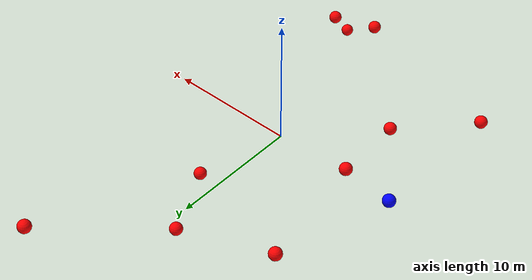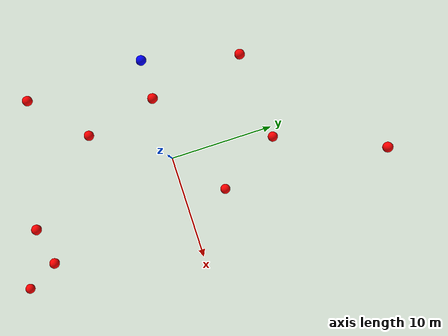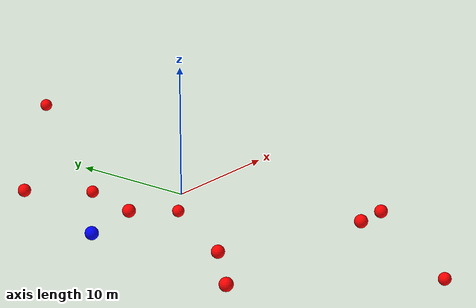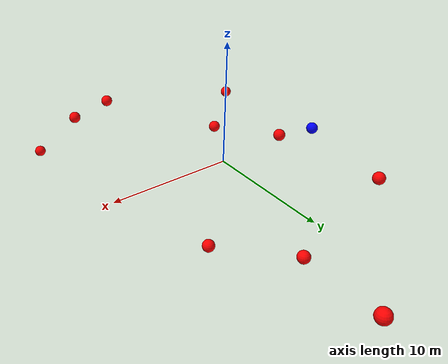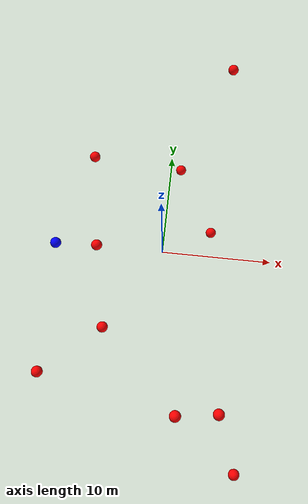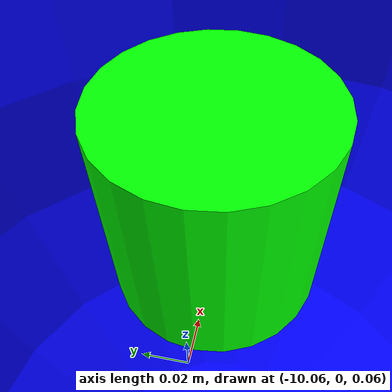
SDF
<?xml version="1.0" ?>
<sdf version="1.8">
    <world name="3d_world">
        <physics name="1ms" type="ode">
            <max_step_size>0.001</max_step_size>
            <real_time_factor>1.0</real_time_factor>
            <real_time_update_rate>1000.0</real_time_update_rate>
        </physics>
        <gravity>0 0 0</gravity>

        <plugin
            filename="gz-sim-physics-system"
            name="gz::sim::v8::systems::Physics">
        </plugin>
        <plugin
            filename="libignition-gazebo-user-commands-system.so"
            name="ignition::gazebo::systems::UserCommands">
        </plugin>
        <plugin
            filename="gz-sim-scene-broadcaster-system"
            name="gz::sim::systems::SceneBroadcaster">
        </plugin>
        <plugin
            filename="gz-sim-sensors-system"
            name="gz::sim::systems::Sensors">
            <render_engine>ogre2</render_engine>
        </plugin>

        <light type="directional" name="sun">
            <cast_shadows>true</cast_shadows>
            <pose>0 0 10 0 0 0</pose>
            <diffuse>0.8 0.8 0.8 1</diffuse>
            <specular>0.2 0.2 0.2 1</specular>
            <attenuation>
                <range>1000</range>
                <constant>0.9</constant>
                <linear>0.01</linear>
                <quadratic>0.001</quadratic>
            </attenuation>
            <direction>-0.5 0.1 -0.9</direction>
        </light>

        <!-- AGENTE -->
        <model name='agente' canonical_link='chassis'>
            <pose relative_to='world'>-10.0 0 0.0 0 0 0</pose>
            <link name='chassis'>
                <pose relative_to='__model__'>0.0 0 0.0 0 0 0</pose>
                <inertial>
                    <mass>1.14395</mass>
                    <inertia>
                        <ixx>0.095329</ixx>
                        <ixy>0</ixy>
                        <ixz>0</ixz>
                        <iyy>0.381317</iyy>
                        <iyz>0</iyz>
                        <izz>0.476646</izz>
                    </inertia>
                </inertial>
                <visual name='visual'>
                    <geometry>
                        <sphere>
                            <radius>0.5</radius>
                        </sphere>
                    </geometry>
                    <material>
                        <ambient>0.0 0.0 1.0 1</ambient>
                        <diffuse>0.0 0.0 1.0 1</diffuse>
                        <specular>0.0 0.0 1.0 1</specular>
                    </material>
                </visual>
                <collision name='collision'>
                    <geometry>
                        <sphere>
                            <radius>0.5</radius>
                        </sphere>
                    </geometry>
                </collision>
                <enable_gravity>false</enable_gravity>
            </link>

            <link name='lidar_link'>
                <pose relative_to='chassis'>0.0 0 0.1 0 0 0</pose>
                <inertial>
                    <mass>0.1</mass>
                    <inertia>
                        <ixx>0.000166667</ixx>
                        <iyy>0.000166667</iyy>
                        <izz>0.000166667</izz>
                    </inertia>
                </inertial>
                <collision name='collision'>
                    <geometry>
                        <cylinder>
                            <radius>0.05</radius>
                            <length>0.1</length>
                        </cylinder>
                    </geometry>
                </collision>
                <visual name='visual'>
                    <geometry>
                        <cylinder>
                            <radius>0.05</radius>
                            <length>0.1</length>
                        </cylinder>
                    </geometry>
                    <material>
                        <ambient>0.0 1.0 0.0 1</ambient>
                        <diffuse>0.0 1.0 0.0 1</diffuse>
                        <specular>0.0 1.0 0.0 1</specular>
                    </material>
                </visual>
                <sensor name="lidar" type="gpu_lidar">
                    <topic>scan</topic>
                    <update_rate>10</update_rate>
                    <lidar>
                        <scan>
                            <horizontal>
                                <samples>5000</samples>
                                <resolution>1</resolution>
                                <min_angle>-3.14159</min_angle>
                                <max_angle>3.14159</max_angle>
                            </horizontal>
                        </scan>
                        <range>
                            <min>0.1</min>
                            <max>10.0</max>
                            <resolution>0.01</resolution>
                        </range>
                    </lidar>
                    <visualize>true</visualize>
                    <always_on>true</always_on>
                    <update_rate>10</update_rate>
                    <pose_frame>lidar</pose_frame>
                </sensor>
                <enable_gravity>false</enable_gravity>
            </link>

            <joint name="lidar_joint" type="fixed">
                <parent>chassis</parent>
                <child>lidar_link</child>
            </joint>

            <plugin
                filename="ignition-gazebo-joint-state-publisher-system"
                name="ignition::gazebo::systems::JointStatePublisher">
            </plugin>
            <plugin
                filename="ignition-gazebo-odometry-publisher-system"
                name="ignition::gazebo::systems::OdometryPublisher">
                <dimensions>3</dimensions>
            </plugin>
            <plugin
                filename="ignition-gazebo-velocity-control-system"
                name="ignition::gazebo::systems::VelocityControl">
                <initial_linear>0.0 0 0</initial_linear>
                <initial_angular>0 0 0.0</initial_angular>
            </plugin>
            <plugin
                filename="libignition-gazebo-pose-publisher-system.so"
                name="ignition::gazebo::systems::PosePublisher">
                <topic>/agente/pose</topic>
                <frame_id>agente</frame_id>
                <update_rate>30</update_rate>
            </plugin>
        </model>

        <!-- OBSTACLE 1 -->
        <model name='obstacle_1' canonical_link='obstacle'>
            <static>false</static>
            <pose relative_to='world'>8.28 -18.51 -4.96 0 0 0</pose>
            <link name='obstacle'>
                <pose relative_to='__model__'>0.0 0 0.0 0 0 0</pose>
                <visual name='visual'>
                    <geometry>
                        <sphere>
                            <radius>0.50</radius>
                        </sphere>
                    </geometry>
                    <material>
                        <ambient>1.0 0.0 0.0 1</ambient>
                        <diffuse>1.0 0.0 0.0 1</diffuse>
                        <specular>1.0 0.0 0.0 1</specular>
                    </material>
                </visual>
                <collision name='collision'>
                    <geometry>
                        <sphere>
                            <radius>0.50</radius>
                        </sphere>
                    </geometry>
                </collision>
                <enable_gravity>false</enable_gravity>
            </link>

            <plugin
                filename="ignition-gazebo-velocity-control-system"
                name="ignition::gazebo::systems::VelocityControl">
                <initial_linear>-0.09 1.93 0.52</initial_linear>
                <initial_angular>0 0 0</initial_angular>
            </plugin>

            <plugin
                filename="ignition-gazebo-odometry-publisher-system"
                name="ignition::gazebo::systems::OdometryPublisher">
                <dimensions>3</dimensions>
            </plugin>
        </model>

        <!-- OBSTACLE 2 -->
        <model name='obstacle_2' canonical_link='obstacle'>
            <static>false</static>
            <pose relative_to='world'>-6.07 -0.05 0.51 0 0 0</pose>
            <link name='obstacle'>
                <pose relative_to='__model__'>0.0 0 0.0 0 0 0</pose>
                <visual name='visual'>
                    <geometry>
                        <sphere>
                            <radius>0.50</radius>
                        </sphere>
                    </geometry>
                    <material>
                        <ambient>1.0 0.0 0.0 1</ambient>
                        <diffuse>1.0 0.0 0.0 1</diffuse>
                        <specular>1.0 0.0 0.0 1</specular>
                    </material>
                </visual>
                <collision name='collision'>
                    <geometry>
                        <sphere>
                            <radius>0.50</radius>
                        </sphere>
                    </geometry>
                </collision>
                <enable_gravity>false</enable_gravity>
            </link>

            <plugin
                filename="ignition-gazebo-velocity-control-system"
                name="ignition::gazebo::systems::VelocityControl">
                <initial_linear>1.81 0.01 -0.09</initial_linear>
                <initial_angular>0 0 0</initial_angular>
            </plugin>

            <plugin
                filename="ignition-gazebo-odometry-publisher-system"
                name="ignition::gazebo::systems::OdometryPublisher">
                <dimensions>3</dimensions>
            </plugin>
        </model>

        <!-- OBSTACLE 3 -->
        <model name='obstacle_3' canonical_link='obstacle'>
            <static>false</static>
            <pose relative_to='world'>0.90 10.24 -2.39 0 0 0</pose>
            <link name='obstacle'>
                <pose relative_to='__model__'>0.0 0 0.0 0 0 0</pose>
                <visual name='visual'>
                    <geometry>
                        <sphere>
                            <radius>0.50</radius>
                        </sphere>
                    </geometry>
                    <material>
                        <ambient>1.0 0.0 0.0 1</ambient>
                        <diffuse>1.0 0.0 0.0 1</diffuse>
                        <specular>1.0 0.0 0.0 1</specular>
                    </material>
                </visual>
                <collision name='collision'>
                    <geometry>
                        <sphere>
                            <radius>0.50</radius>
                        </sphere>
                    </geometry>
                </collision>
                <enable_gravity>false</enable_gravity>
            </link>

            <plugin
                filename="ignition-gazebo-velocity-control-system"
                name="ignition::gazebo::systems::VelocityControl">
                <initial_linear>-0.01 -1.95 0.45</initial_linear>
                <initial_angular>0 0 0</initial_angular>
            </plugin>

            <plugin
                filename="ignition-gazebo-odometry-publisher-system"
                name="ignition::gazebo::systems::OdometryPublisher">
                <dimensions>3</dimensions>
            </plugin>
        </model>

        <!-- OBSTACLE 4 -->
        <model name='obstacle_4' canonical_link='obstacle'>
            <static>false</static>
            <pose relative_to='world'>4.51 4.12 -3.74 0 0 0</pose>
            <link name='obstacle'>
                <pose relative_to='__model__'>0.0 0 0.0 0 0 0</pose>
                <visual name='visual'>
                    <geometry>
                        <sphere>
                            <radius>0.50</radius>
                        </sphere>
                    </geometry>
                    <material>
                        <ambient>1.0 0.0 0.0 1</ambient>
                        <diffuse>1.0 0.0 0.0 1</diffuse>
                        <specular>1.0 0.0 0.0 1</specular>
                    </material>
                </visual>
                <collision name='collision'>
                    <geometry>
                        <sphere>
                            <radius>0.50</radius>
                        </sphere>
                    </geometry>
                </collision>
                <enable_gravity>false</enable_gravity>
            </link>

            <plugin
                filename="ignition-gazebo-velocity-control-system"
                name="ignition::gazebo::systems::VelocityControl">
                <initial_linear>0.33 -0.62 0.56</initial_linear>
                <initial_angular>0 0 0</initial_angular>
            </plugin>

            <plugin
                filename="ignition-gazebo-odometry-publisher-system"
                name="ignition::gazebo::systems::OdometryPublisher">
                <dimensions>3</dimensions>
            </plugin>
        </model>

        <!-- OBSTACLE 5 -->
        <model name='obstacle_5' canonical_link='obstacle'>
            <static>false</static>
            <pose relative_to='world'>6.22 -14.02 -0.00 0 0 0</pose>
            <link name='obstacle'>
                <pose relative_to='__model__'>0.0 0 0.0 0 0 0</pose>
                <visual name='visual'>
                    <geometry>
                        <sphere>
                            <radius>0.50</radius>
                        </sphere>
                    </geometry>
                    <material>
                        <ambient>1.0 0.0 0.0 1</ambient>
                        <diffuse>1.0 0.0 0.0 1</diffuse>
                        <specular>1.0 0.0 0.0 1</specular>
                    </material>
                </visual>
                <collision name='collision'>
                    <geometry>
                        <sphere>
                            <radius>0.50</radius>
                        </sphere>
                    </geometry>
                </collision>
                <enable_gravity>false</enable_gravity>
            </link>

            <plugin
                filename="ignition-gazebo-velocity-control-system"
                name="ignition::gazebo::systems::VelocityControl">
                <initial_linear>-0.37 1.97 0.00</initial_linear>
                <initial_angular>0 0 0</initial_angular>
            </plugin>

            <plugin
                filename="ignition-gazebo-odometry-publisher-system"
                name="ignition::gazebo::systems::OdometryPublisher">
                <dimensions>3</dimensions>
            </plugin>
        </model>

        <!-- OBSTACLE 6 -->
        <model name='obstacle_6' canonical_link='obstacle'>
            <static>false</static>
            <pose relative_to='world'>-9.76 -11.90 -0.78 0 0 0</pose>
            <link name='obstacle'>
                <pose relative_to='__model__'>0.0 0 0.0 0 0 0</pose>
                <visual name='visual'>
                    <geometry>
                        <sphere>
                            <radius>0.50</radius>
                        </sphere>
                    </geometry>
                    <material>
                        <ambient>1.0 0.0 0.0 1</ambient>
                        <diffuse>1.0 0.0 0.0 1</diffuse>
                        <specular>1.0 0.0 0.0 1</specular>
                    </material>
                </visual>
                <collision name='collision'>
                    <geometry>
                        <sphere>
                            <radius>0.50</radius>
                        </sphere>
                    </geometry>
                </collision>
                <enable_gravity>false</enable_gravity>
            </link>

            <plugin
                filename="ignition-gazebo-velocity-control-system"
                name="ignition::gazebo::systems::VelocityControl">
                <initial_linear>1.15 1.63 0.11</initial_linear>
                <initial_angular>0 0 0</initial_angular>
            </plugin>

            <plugin
                filename="ignition-gazebo-odometry-publisher-system"
                name="ignition::gazebo::systems::OdometryPublisher">
                <dimensions>3</dimensions>
            </plugin>
        </model>

        <!-- OBSTACLE 7 -->
        <model name='obstacle_7' canonical_link='obstacle'>
            <static>false</static>
            <pose relative_to='world'>-7.58 9.25 0.44 0 0 0</pose>
            <link name='obstacle'>
                <pose relative_to='__model__'>0.0 0 0.0 0 0 0</pose>
                <visual name='visual'>
                    <geometry>
                        <sphere>
                            <radius>0.50</radius>
                        </sphere>
                    </geometry>
                    <material>
                        <ambient>1.0 0.0 0.0 1</ambient>
                        <diffuse>1.0 0.0 0.0 1</diffuse>
                        <specular>1.0 0.0 0.0 1</specular>
                    </material>
                </visual>
                <collision name='collision'>
                    <geometry>
                        <sphere>
                            <radius>0.50</radius>
                        </sphere>
                    </geometry>
                </collision>
                <enable_gravity>false</enable_gravity>
            </link>

            <plugin
                filename="ignition-gazebo-velocity-control-system"
                name="ignition::gazebo::systems::VelocityControl">
                <initial_linear>1.34 -1.48 -0.07</initial_linear>
                <initial_angular>0 0 0</initial_angular>
            </plugin>

            <plugin
                filename="ignition-gazebo-odometry-publisher-system"
                name="ignition::gazebo::systems::OdometryPublisher">
                <dimensions>3</dimensions>
            </plugin>
        </model>

        <!-- OBSTACLE 8 -->
        <model name='obstacle_8' canonical_link='obstacle'>
            <static>false</static>
            <pose relative_to='world'>5.24 19.60 2.28 0 0 0</pose>
            <link name='obstacle'>
                <pose relative_to='__model__'>0.0 0 0.0 0 0 0</pose>
                <visual name='visual'>
                    <geometry>
                        <sphere>
                            <radius>0.50</radius>
                        </sphere>
                    </geometry>
                    <material>
                        <ambient>1.0 0.0 0.0 1</ambient>
                        <diffuse>1.0 0.0 0.0 1</diffuse>
                        <specular>1.0 0.0 0.0 1</specular>
                    </material>
                </visual>
                <collision name='collision'>
                    <geometry>
                        <sphere>
                            <radius>0.50</radius>
                        </sphere>
                    </geometry>
                </collision>
                <enable_gravity>false</enable_gravity>
            </link>

            <plugin
                filename="ignition-gazebo-velocity-control-system"
                name="ignition::gazebo::systems::VelocityControl">
                <initial_linear>-0.42 -1.94 -0.23</initial_linear>
                <initial_angular>0 0 0</initial_angular>
            </plugin>

            <plugin
                filename="ignition-gazebo-odometry-publisher-system"
                name="ignition::gazebo::systems::OdometryPublisher">
                <dimensions>3</dimensions>
            </plugin>
        </model>

        <!-- OBSTACLE 9 -->
        <model name='obstacle_9' canonical_link='obstacle'>
            <static>false</static>
            <pose relative_to='world'>2.58 -14.57 0.49 0 0 0</pose>
            <link name='obstacle'>
                <pose relative_to='__model__'>0.0 0 0.0 0 0 0</pose>
                <visual name='visual'>
                    <geometry>
                        <sphere>
                            <radius>0.50</radius>
                        </sphere>
                    </geometry>
                    <material>
                        <ambient>1.0 0.0 0.0 1</ambient>
                        <diffuse>1.0 0.0 0.0 1</diffuse>
                        <specular>1.0 0.0 0.0 1</specular>
                    </material>
                </visual>
                <collision name='collision'>
                    <geometry>
                        <sphere>
                            <radius>0.50</radius>
                        </sphere>
                    </geometry>
                </collision>
                <enable_gravity>false</enable_gravity>
            </link>

            <plugin
                filename="ignition-gazebo-velocity-control-system"
                name="ignition::gazebo::systems::VelocityControl">
                <initial_linear>0.02 2.00 -0.07</initial_linear>
                <initial_angular>0 0 0</initial_angular>
            </plugin>

            <plugin
                filename="ignition-gazebo-odometry-publisher-system"
                name="ignition::gazebo::systems::OdometryPublisher">
                <dimensions>3</dimensions>
            </plugin>
        </model>

        <!-- OBSTACLE 10 -->
        <model name='obstacle_10' canonical_link='obstacle'>
            <static>false</static>
            <pose relative_to='world'>-4.72 -7.25 -1.32 0 0 0</pose>
            <link name='obstacle'>
                <pose relative_to='__model__'>0.0 0 0.0 0 0 0</pose>
                <visual name='visual'>
                    <geometry>
                        <sphere>
                            <radius>0.50</radius>
                        </sphere>
                    </geometry>
                    <material>
                        <ambient>1.0 0.0 0.0 1</ambient>
                        <diffuse>1.0 0.0 0.0 1</diffuse>
                        <specular>1.0 0.0 0.0 1</specular>
                    </material>
                </visual>
                <collision name='collision'>
                    <geometry>
                        <sphere>
                            <radius>0.50</radius>
                        </sphere>
                    </geometry>
                </collision>
                <enable_gravity>false</enable_gravity>
            </link>

            <plugin
                filename="ignition-gazebo-velocity-control-system"
                name="ignition::gazebo::systems::VelocityControl">
                <initial_linear>0.87 1.77 0.32</initial_linear>
                <initial_angular>0 0 0</initial_angular>
            </plugin>

            <plugin
                filename="ignition-gazebo-odometry-publisher-system"
                name="ignition::gazebo::systems::OdometryPublisher">
                <dimensions>3</dimensions>
            </plugin>
        </model>

    </world>
</sdf>
